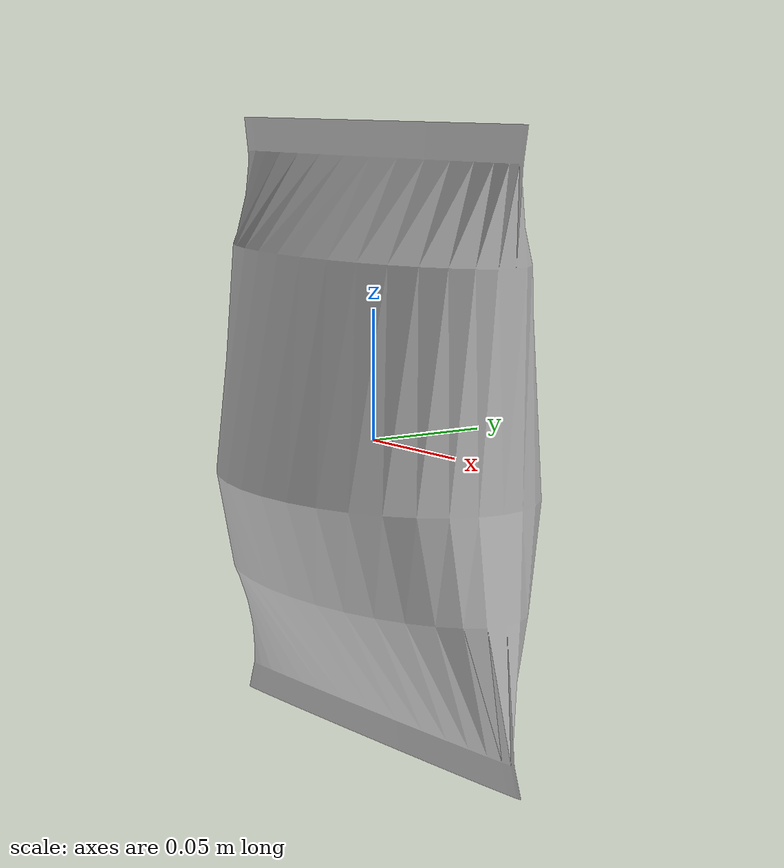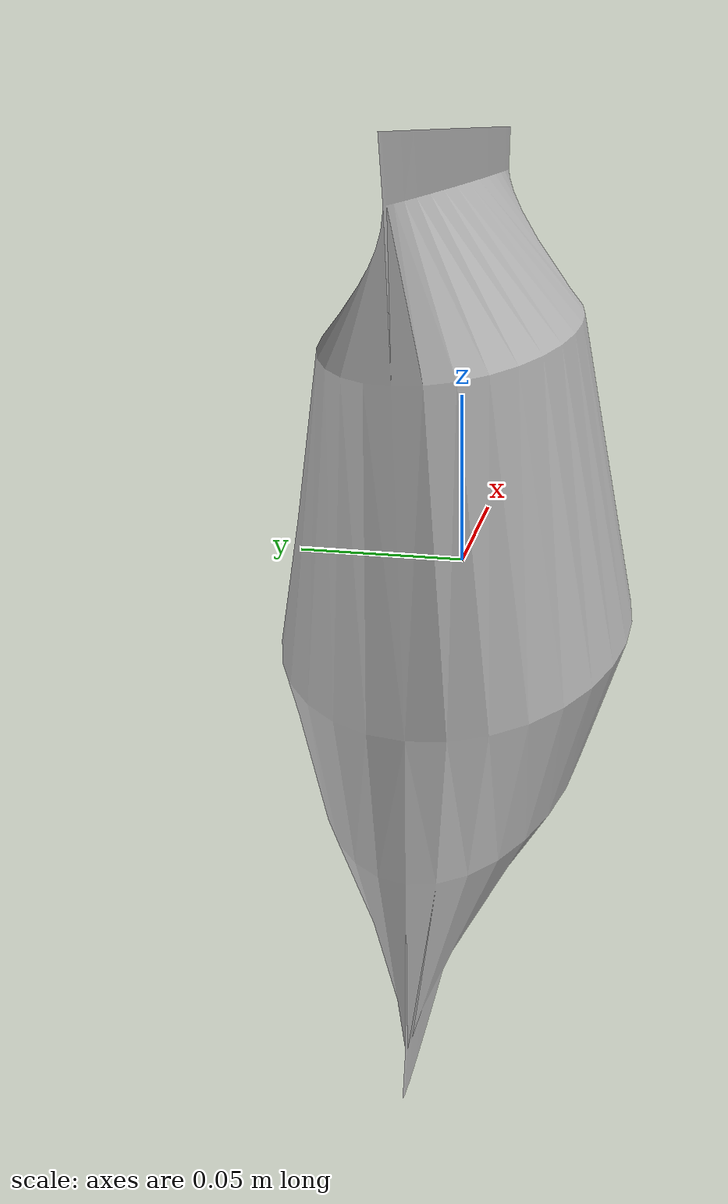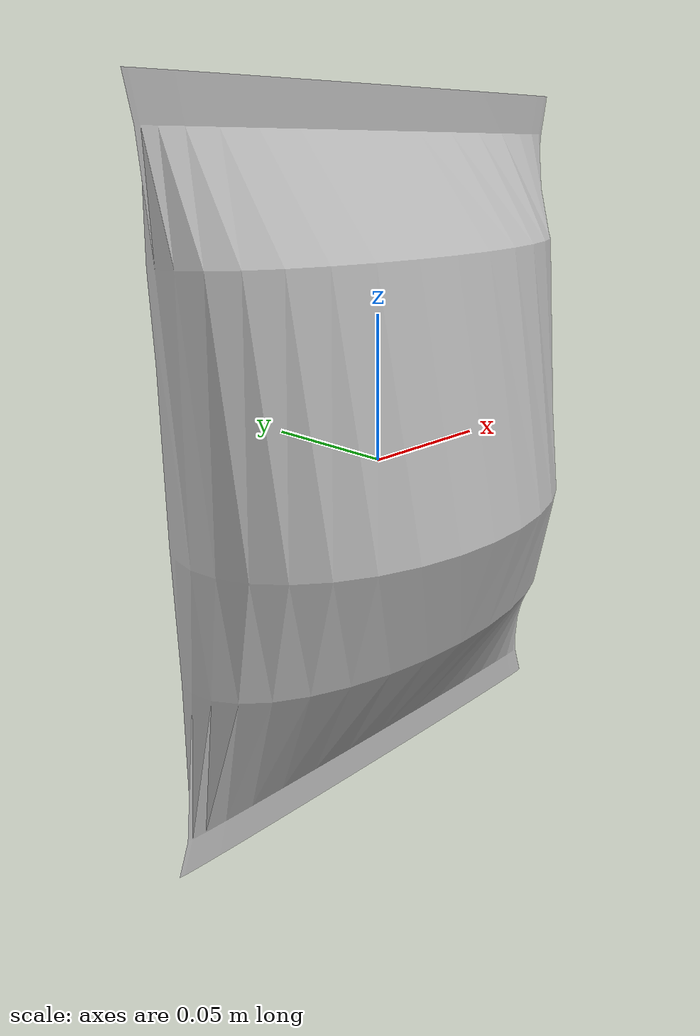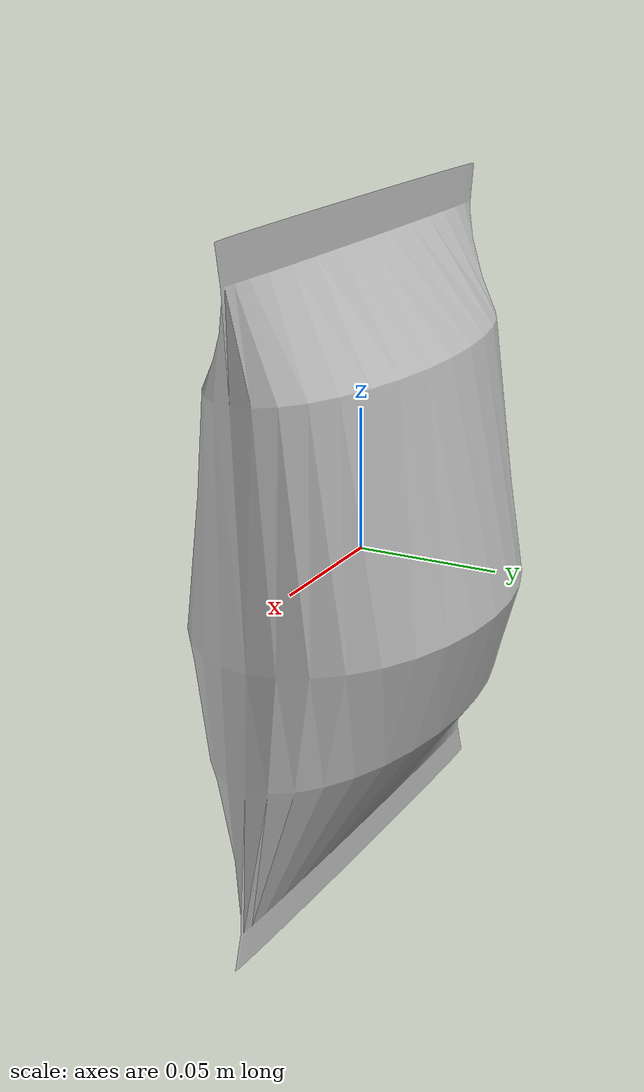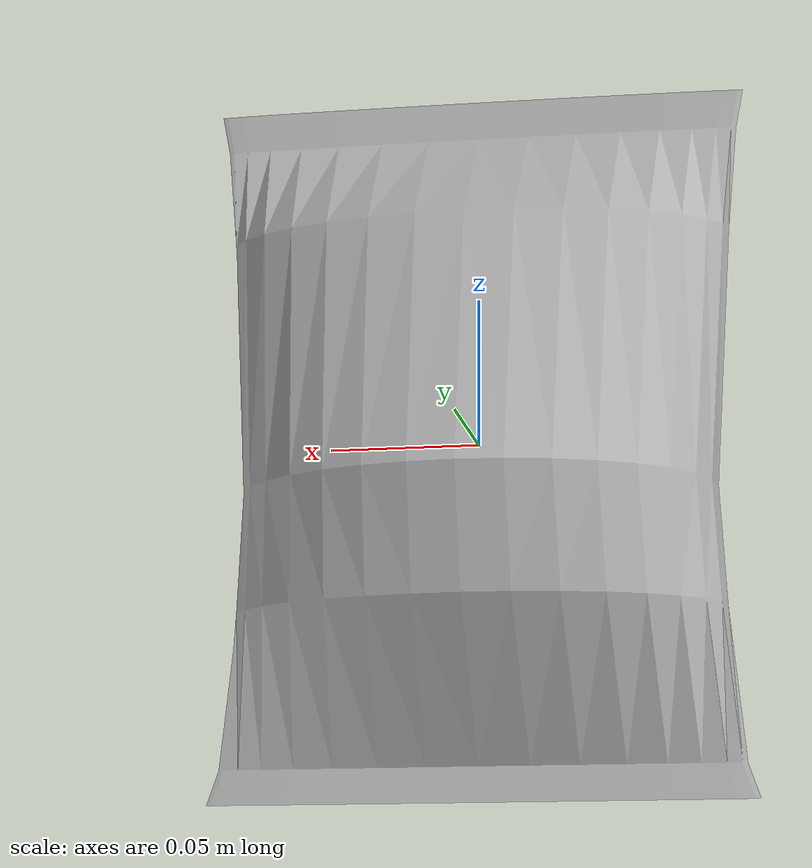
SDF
<?xml version="1.0" ?>
<sdf version="1.4">
    <model name='snack'>
      <link name='link'>
        <pose>0 0 0 0 0 0</pose>
        <inertial>
          <mass>0.059</mass>
          <inertia>
            <ixx>0.000332367</ixx>
            <ixy>0</ixy>
            <ixz>0</ixz>
            <iyy>0.0004425</iyy>
            <iyz>0</iyz>
            <izz>0.000208467</izz>
          </inertia>
        </inertial>
        <visual name='snack'>
          <pose>0.0 0.0 0.0 0 0 0</pose>
          <geometry>
            <mesh>
              <uri>model://snack/meshes/snack.dae</uri>
            </mesh>
          </geometry>

        </visual>
        <collision name='snack'>
          <pose>0.0 0.0 0.0 0 0 0</pose>
          <geometry>
            <box>
              <size>0.18 0.10 0.24</size>
            </box>
          </geometry>
          <max_contacts>1</max_contacts>
          <surface>
            <bounce>
              <restitution_coefficient>0.2</restitution_coefficient>
              <threshold>0</threshold>
            </bounce>
            <friction>
              <ode/>
            </friction>
            <contact>
              <ode>
                <max_vel>1</max_vel>
              </ode>
            </contact>
          </surface>
        </collision>
        <velocity_decay>
          <linear>0</linear>
          <angular>0</angular>
        </velocity_decay>
        <self_collide>0</self_collide>
        <kinematic>0</kinematic>
        <gravity>1</gravity>
      </link>
      <static>0</static>
    </model>
</sdf>
